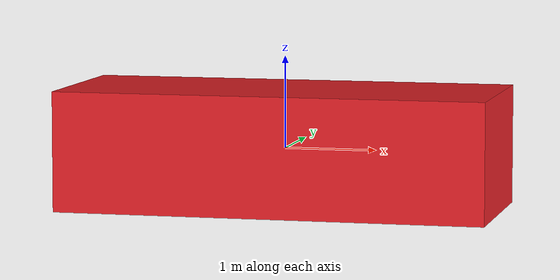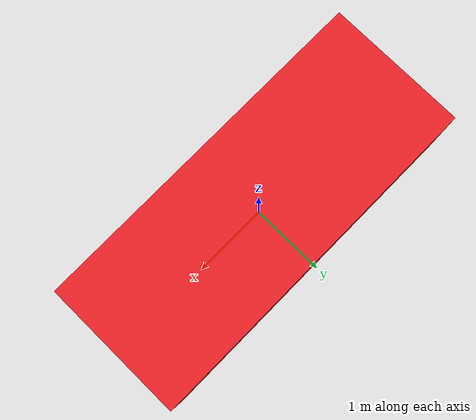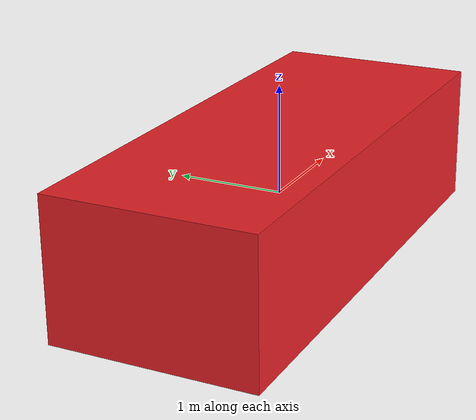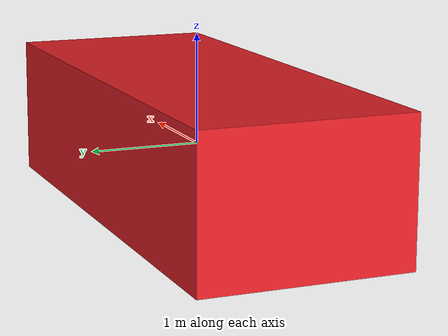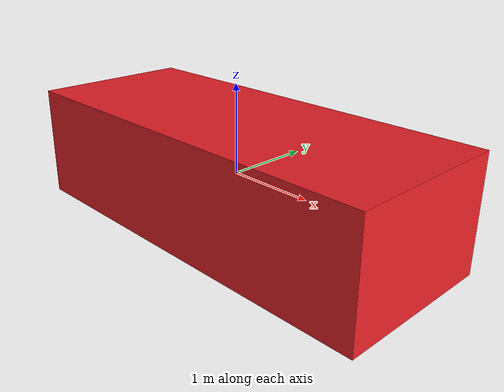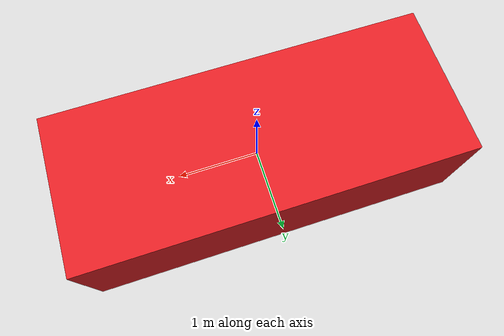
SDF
<?xml version="1.0" ?>
<sdf version='1.6'>
  <model name='Car'>
    <link name="CarLink">
      <pose frame=''>0 0 0 0 0 0</pose>
      <collision name='CarLink_collision'>
        <geometry>
          <box>
            <size>4.68 1.88 1.3</size>
          </box>
        </geometry>
      </collision>
      <visual name='CarLink_visual'>
        <geometry>
          <box>
            <size>4.68 1.88 1.3</size>
          </box>
        </geometry>
        <material>
          <ambient>0.90980392156 0.1294117647 0.15294117647  1.0</ambient>
        </material>
      </visual>
      <gravity>0</gravity>
      <self_collide>0</self_collide>
    </link>
  </model>
</sdf>
